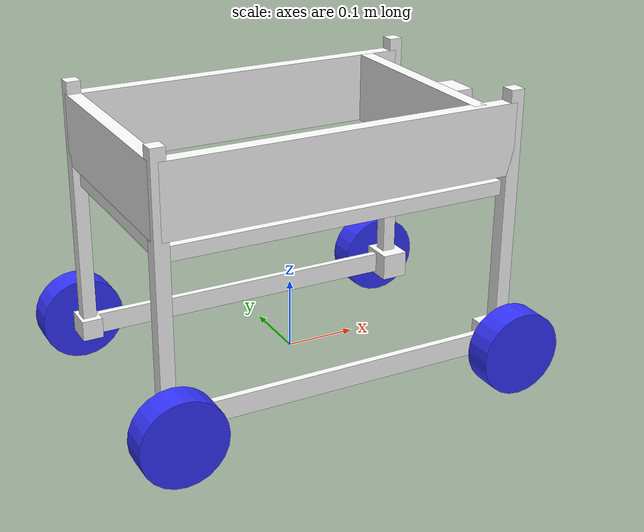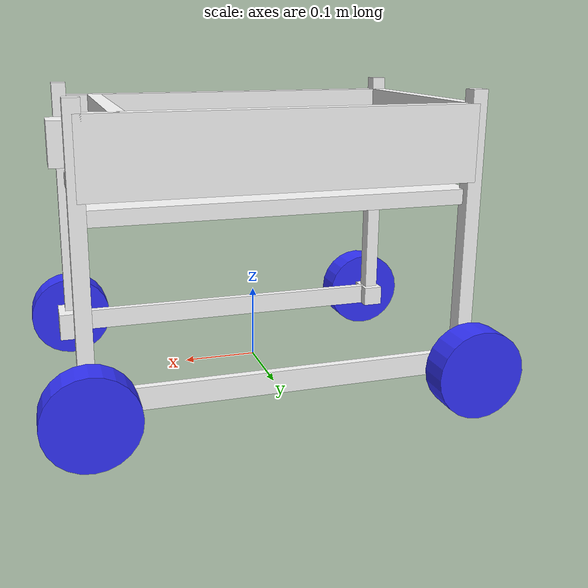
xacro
<?xml version="1.0"?>
<robot xmlns:xacro="http://www.ros.org/wiki/xacro" >
<xacro:include filename="inertial_macros.xacro" />
    <material name="white">
        <color rgba="1 1 1 1" />
    </material>

    <material name="orange">
        <color rgba="1 0.3 0.1 1"/>
    </material>

    <material name="blue">
        <color rgba="0.2 0.2 1 1"/>
    </material>

    <material name="black">
        <color rgba="0 0 0 1"/>
    </material>

    <material name="red">
        <color rgba="1 0 0 1"/>
    </material>

    <!-- BASE LINK -->

    <link name="base_link">

    </link>

    <!-- BASE_FOOTPRINT LINK -->

    <joint name="base_footprint_joint" type="fixed">
    <parent link="base_link"/>
    <child link="base_footprint"/>
    <origin xyz="0 0 0" rpy="0 0 0"/>
    </joint>

    <link name="base_footprint">
    </link>

    <joint name="chassis_joint" type="fixed">
    <parent link="base_link"/>
    <child link="chassis"/>
    <origin xyz="0 0 0"/>
    </joint>

    <link name="chassis">
    <visual>
        <origin xyz="0.0 0 0.25" rpy="0 0 0"/>
        <geometry>
            <box size="0.5 0.3 0.02"/>
            <!--mesh filename="file:///home/tien/colcon_ws/articubot_one/description/body.dae" scale="1 1 1"/-->
        </geometry>
        <material name="white"/>
    </visual>
    <collision>
        <origin xyz="0.0 0 0.25" rpy="0 0 0"/>
        <geometry>
            <box size="0.5 0.3 0.02"/>
            <!--mesh filename="file:///home/tien/colcon_ws/articubot_one/description/body.dae" scale="1 1 1"/-->
        </geometry>
    </collision>
    <xacro:inertial_box mass="25" x="0.5" y="0.3" z="0.02">
        <origin xyz="0 0 0.25" rpy="0 0 0"/>
    </xacro:inertial_box>
    </link>
    <gazebo reference="chassis">
    <material>Gazebo/White</material>
    </gazebo>

    <joint name="chassis_joint1" type="fixed">
    <parent link="base_link"/>
    <child link="chassissidel"/>
    <origin xyz="0 0 0"/>
    </joint>

    <link name="chassissidel">
    <visual>
        <origin xyz="0 0.15 0.32" rpy="0 0 0"/>
        <geometry>
            <box size="0.5 0.02 0.1"/>
        </geometry>
        <material name="white"/>
    </visual>
    <collision>
        <origin xyz="0 0.15 0.32" rpy="0 0 0"/>
        <geometry>
            <box size="0.5 0.02 0.1"/>
        </geometry>
    </collision>
    <xacro:inertial_box mass="0.75" x="0.5" y="0.02" z="0.1">
        <origin xyz="0 0.15 0.32" rpy="0 0 0"/>
    </xacro:inertial_box>
    </link>
    <gazebo reference="chassissidel">
    <material>Gazebo/White</material>
    </gazebo>

    <joint name="chassis_joint2" type="fixed">
    <parent link="base_link"/>
    <child link="chassissider"/>
    <origin xyz="0 0 0"/>
    </joint>

    <link name="chassissider">
    <visual>
        <origin xyz="0 -0.15 0.32" rpy="0 0 0"/>
        <geometry>
            <box size="0.5 0.02 0.1"/>
        </geometry>
        <material name="white"/>
    </visual>
    <collision>
        <origin xyz="0 -0.15 0.32" rpy="0 0 0"/>
        <geometry>
            <box size="0.5 0.02 0.1"/>
        </geometry>
    </collision>
    <xacro:inertial_box mass="0.75" x="0.5" y="0.02" z="0.1">
        <origin xyz="0 -0.15 0.32" rpy="0 0 0"/>
    </xacro:inertial_box>
    </link>
    <gazebo reference="chassissider">
    <material>Gazebo/White</material>
    </gazebo>

    <joint name="chassis_joint3" type="fixed">
    <parent link="base_link"/>
    <child link="chassissidef"/>
    <origin xyz="0 0 0"/>
    </joint>

    <link name="chassissidef">
    <visual>
        <origin xyz="0.2 0 0.32" rpy="0 0 0"/>
        <geometry>
            <box size="0.02 0.3 0.1"/>
        </geometry>
        <material name="white"/>
    </visual>
    <collision>
        <origin xyz="0.2 0 0.32" rpy="0 0 0"/>
        <geometry>
            <box size="0.02 0.3 0.1"/>
        </geometry>
    </collision>
    </link>
    <gazebo reference="chassissidef">
    <material>Gazebo/White</material>
    </gazebo>

    <joint name="chassis_joint4" type="fixed">
    <parent link="base_link"/>
    <child link="chassissideb"/>
    <origin xyz="0 0 0"/>
    </joint>

    <link name="chassissideb">
    <visual>
        <origin xyz="-0.25 0 0.32" rpy="0 0 0"/>
        <geometry>
            <box size="0.02 0.3 0.1"/>
        </geometry>
        <material name="white"/>
    </visual>
    <collision>
        <origin xyz="-0.25 0 0.32" rpy="0 0 0"/>
        <geometry>
            <box size="0.02 0.3 0.1"/>
        </geometry>
    </collision>
    </link>
    <gazebo reference="chassissideb">
    <material>Gazebo/White</material>
    </gazebo>

    <joint name="chassis_joint5" type="fixed">
    <parent link="base_link"/>
    <child link="sao_fl"/>
    <origin xyz="0 0 0"/>
    </joint>

    <link name="sao_fl">
    <visual>
        <origin xyz="0.25 -0.15 0.2" rpy="0 0 0"/>
        <geometry>
            <box size="0.02 0.02 0.375"/>
        </geometry>
        <material name="white"/>
    </visual>
    <collision>
        <origin xyz="0.25 -0.15 0.2" rpy="0 0 0"/>
        <geometry>
            <box size="0.02 0.02 0.375"/>
        </geometry>
    </collision>
    </link>
    <gazebo reference="sao_fl">
    <material>Gazebo/White</material>
    </gazebo>

    <joint name="chassis_joint6" type="fixed">
    <parent link="base_link"/>
    <child link="sao_fr"/>
    <origin xyz="0 0 0"/>
    </joint>

    <link name="sao_fr">
    <visual>
        <origin xyz="0.25 0.15 0.2" rpy="0 0 0"/>
        <geometry>
            <box size="0.02 0.02 0.375"/>
        </geometry>
        <material name="white"/>
    </visual>
    <collision>
        <origin xyz="0.25 0.15 0.2" rpy="0 0 0"/>
        <geometry>
            <box size="0.02 0.02 0.375"/>
        </geometry>
    </collision>
    </link>
    <gazebo reference="sao_fr">
    <material>Gazebo/White</material>
    </gazebo>

    <joint name="chassis_joint7" type="fixed">
    <parent link="base_link"/>
    <child link="sao_br"/>
    <origin xyz="0 0 0"/>
    </joint>

    <link name="sao_br">
    <visual>
        <origin xyz="-0.25 0.15 0.2" rpy="0 0 0"/>
        <geometry>
            <box size="0.02 0.02 0.375"/>
        </geometry>
        <material name="white"/>
    </visual>
    <collision>
        <origin xyz="-0.25 0.15 0.2" rpy="0 0 0"/>
        <geometry>
            <box size="0.02 0.02 0.375"/>
        </geometry>
    </collision>
    </link>
    <gazebo reference="sao_br">
    <material>Gazebo/White</material>
    </gazebo>

    <joint name="chassis_joint8" type="fixed">
    <parent link="base_link"/>
    <child link="sao_bl"/>
    <origin xyz="0 0 0"/>
    </joint>

    <link name="sao_bl">
    <visual>
        <origin xyz="-0.25 -0.15 0.2" rpy="0 0 0"/>
        <geometry>
            <box size="0.02 0.02 0.375"/>
        </geometry>
        <material name="white"/>
    </visual>
    <collision>
        <origin xyz="-0.25 -0.15 0.2" rpy="0 0 0"/>
        <geometry>
            <box size="0.02 0.02 0.375"/>
        </geometry>
    </collision>
    </link>
    <gazebo reference="sao_bl">
    <material>Gazebo/White</material>
    </gazebo>

    <joint name="chassis_joint9" type="fixed">
    <parent link="base_link"/>
    <child link="grippermotor"/>
    <origin xyz="0 0 0"/>
    </joint>

    <link name="grippermotor">
    <visual>
        <origin xyz="0.24 0 0.32" rpy="0 0 0"/>
        <geometry>
            <box size="0.07 0.05 0.06"/>
        </geometry>
        <material name="white"/>
    </visual>
    <collision>
        <origin xyz="0.24 0 0.32" rpy="0 0 0"/>
        <geometry>
            <box size="0.07 0.05 0.06"/>
        </geometry>
    </collision>
    </link>
    <gazebo reference="grippermotor">
    <material>Gazebo/White</material>
    </gazebo>

    <joint name="chassis_joint10" type="fixed">
    <parent link="base_link"/>
    <child link="drivemotor_fl"/>
    <origin xyz="0 0 0"/>
    </joint>

    <link name="drivemotor_fl">
    <visual>
        <origin xyz="0.25 0.15 0.023" rpy="0 0 0"/>
        <geometry>
            <box size="0.04 0.06 0.04"/>
        </geometry>
        <material name="white"/>
    </visual>
    <collision>
        <origin xyz="0.25 0.15 0.023" rpy="0 0 0"/>
        <geometry>
            <box size="0.04 0.06 0.04"/>
        </geometry>
    </collision>
    </link>
    <gazebo reference="drivemotor_fl">
    <material>Gazebo/White</material>
    </gazebo>

    <joint name="chassis_joint11" type="fixed">
    <parent link="base_link"/>
    <child link="drivemotor_fr"/>
    <origin xyz="0 0 0"/>
    </joint>

    <link name="drivemotor_fr">
    <visual>
        <origin xyz="0.25 -0.15 0.023" rpy="0 0 0"/>
        <geometry>
            <box size="0.04 0.06 0.04"/>
        </geometry>
        <material name="white"/>
    </visual>
    <collision>
        <origin xyz="0.25 -0.15 0.023" rpy="0 0 0"/>
        <geometry>
            <box size="0.04 0.06 0.04"/>
        </geometry>
    </collision>
    </link>
    <gazebo reference="drivemotor_fr">
    <material>Gazebo/White</material>
    </gazebo>

    <joint name="chassis_joint12" type="fixed">
    <parent link="base_link"/>
    <child link="drivemotor_br"/>
    <origin xyz="0 0 0"/>
    </joint>

    <link name="drivemotor_br">
    <visual>
        <origin xyz="-0.25 -0.15 0.023" rpy="0 0 0"/>
        <geometry>
            <box size="0.03 0.04 0.03"/>
        </geometry>
        <material name="white"/>
    </visual>
    <collision>
        <origin xyz="-0.25 -0.15 0.023" rpy="0 0 0"/>
        <geometry>
            <box size="0.03 0.04 0.03"/>
        </geometry>
    </collision>
    </link>
    <gazebo reference="drivemotor_br">
    <material>Gazebo/White</material>
    </gazebo>

    <joint name="chassis_joint13" type="fixed">
    <parent link="base_link"/>
    <child link="drivemotor_bl"/>
    <origin xyz="0 0 0"/>
    </joint>

    <link name="drivemotor_bl">
    <visual>
        <origin xyz="-0.25 0.15 0.023" rpy="0 0 0"/>
        <geometry>
            <box size="0.03 0.04 0.03"/>
        </geometry>
        <material name="white"/>
    </visual>
    <collision>
        <origin xyz="-0.25 0.15 0.023" rpy="0 0 0"/>
        <geometry>
            <box size="0.03 0.04 0.03"/>
        </geometry>
    </collision>
    </link>
    <gazebo reference="drivemotor_bl">
    <material>Gazebo/White</material>
    </gazebo>

    <joint name="chassis_joint14" type="fixed">
    <parent link="base_link"/>
    <child link="sidebot_l"/>
    <origin xyz="0 0 0"/>
    </joint>

    <link name="sidebot_l">
    <visual>
        <origin xyz="0 0.15 0.023" rpy="0 0 0"/>
        <geometry>
            <box size="0.5 0.01 0.03"/>
        </geometry>
        <material name="white"/>
    </visual>
    <collision>
        <origin xyz="0 0.15 0.023" rpy="0 0 0"/>
        <geometry>
            <box size="0.5 0.01 0.03"/>
        </geometry>
    </collision>
    </link>
    <gazebo reference="sidebot_l">
    <material>Gazebo/White</material>
    </gazebo>

    <joint name="chassis_joint15" type="fixed">
    <parent link="base_link"/>
    <child link="sidebot_r"/>
    <origin xyz="0 0 0"/>
    </joint>

    <link name="sidebot_r">
    <visual>
        <origin xyz="0 -0.15 0.023" rpy="0 0 0"/>
        <geometry>
            <box size="0.5 0.01 0.03"/>
        </geometry>
        <material name="white"/>
    </visual>
    <collision>
        <origin xyz="0 -0.15 0.023" rpy="0 0 0"/>
        <geometry>
            <box size="0.5 0.01 0.03"/>
        </geometry>
    </collision>
    </link>
    <gazebo reference="sidebot_r">
    <material>Gazebo/White</material>
    </gazebo>

    <!-- Front LEFT WHEEL -->

    <joint name="Front_left_wheel_joint" type="continuous">
    <parent link="base_link"/>
    <child link="Front_left_wheel"/>
    <origin xyz="0.25 0.19 0.023" rpy="-${pi/2} 0 0"/>
    <axis xyz="0 0 1"/>
    </joint>

    <link name="Front_left_wheel">
    <visual>
        <geometry>
            <cylinder length="0.04" radius="0.06" />
        </geometry>
        <material name="blue"/>
    </visual>
    <collision>
        <geometry>
            <cylinder length="0.04" radius="0.06" />
        </geometry>
    </collision>
    <xacro:inertial_cylinder mass="0.2" length="0.05" radius="0.06">
        <origin xyz="0 0 0" rpy="0 0 0"/>
    </xacro:inertial_cylinder>
    </link>
    <gazebo reference="Front_left_wheel">
    <material>Gazebo/Black</material>
    </gazebo>

    <!-- Rear LEFT WHEEL -->

    <joint name="Rear_left_wheel_joint" type="continuous">
    <parent link="base_link"/>
    <child link="Rear_left_wheel"/>
    <origin xyz="-0.25 0.19 0.023" rpy="-${pi/2} 0 0"/>
    <axis xyz="0 0 1"/>
    </joint>

    <link name="Rear_left_wheel">
    <visual>
        <geometry>
            <cylinder length="0.04" radius="0.06" />
        </geometry>
        <material name="blue"/>
    </visual>
    <collision>
        <geometry>
            <cylinder length="0.04" radius="0.06" />
        </geometry>
    </collision>
    <xacro:inertial_cylinder mass="0.2" length="0.05" radius="0.06">
        <origin xyz="0 0 0" rpy="0 0 0"/>
    </xacro:inertial_cylinder>
    </link>
    <gazebo reference="Rear_left_wheel">
    <material>Gazebo/Black</material>
    <mu1 value="0.001"/>
    <mu2 value="0.001"/>
    </gazebo>

    <!-- Front RIGHT WHEEL -->

    <joint name="Front_right_wheel_joint" type="continuous">
    <parent link="base_link"/>
    <child link="Front_right_wheel"/>
    <origin xyz="0.25 -0.19 0.023" rpy="${pi/2} 0 0"/>
    <axis xyz="0 0 -1"/>
    </joint>

    <link name="Front_right_wheel">
    <visual>
        <geometry>
            <cylinder length="0.04" radius="0.06" />
        </geometry>
        <material name="blue"/>
    </visual>
    <collision>
        <geometry>
            <cylinder length="0.04" radius="0.06" />
        </geometry>
    </collision>
    <xacro:inertial_cylinder mass="0.2" length="0.05" radius="0.06">
        <origin xyz="0 0 0" rpy="0 0 0"/>
    </xacro:inertial_cylinder>
    </link>
    <gazebo reference="Front_right_wheel">
    <material>Gazebo/Black</material>
    </gazebo>

    <!-- Rear RIGHT WHEEL -->

    <joint name="Rear_right_wheel_joint" type="continuous">
    <parent link="base_link"/>
    <child link="Rear_right_wheel"/>
    <origin xyz="-0.25 -0.19 0.023" rpy="${pi/2} 0 0"/>
    <axis xyz="0 0 -1"/>
    </joint>

    <link name="Rear_right_wheel">
    <visual>
        <geometry>
            <cylinder length="0.04" radius="0.06" />
        </geometry>
        <material name="blue"/>
    </visual>
    <collision>
        <geometry>
            <cylinder length="0.04" radius="0.06" />
        </geometry>
    </collision>
    <xacro:inertial_cylinder mass="0.2" length="0.05" radius="0.06">
        <origin xyz="0 0 0" rpy="0 0 0"/>
    </xacro:inertial_cylinder>
    </link>
    <gazebo reference="Rear_right_wheel">
    <material>Gazebo/Black</material>
    <mu1 value="0.001"/>
    <mu2 value="0.001"/>
    </gazebo>

</robot>

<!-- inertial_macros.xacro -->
<robot xmlns:xacro="http://www.ros.org/wiki/xacro" >

    <!-- Specify some standard inertial calculations https://en.wikipedia.org/wiki/List_of_moments_of_inertia -->
    <!-- These make use of xacro's mathematical functionality -->

    <xacro:macro name="inertial_sphere" params="mass radius *origin">
        <inertial>
            <xacro:insert_block name="origin"/>
            <mass value="${mass}" />
            <inertia ixx="${(2/5) * mass * (radius*radius)}" ixy="0.0" ixz="0.0"
                    iyy="${(2/5) * mass * (radius*radius)}" iyz="0.0"
                    izz="${(2/5) * mass * (radius*radius)}" />
        </inertial>
    </xacro:macro>

    <xacro:macro name="inertial_box" params="mass x y z *origin">
        <inertial>
            <xacro:insert_block name="origin"/>
            <mass value="${mass}" />
            <inertia ixx="${(1/12) * mass * (y*y+z*z)}" ixy="0.0" ixz="0.0"
                    iyy="${(1/12) * mass * (x*x+z*z)}" iyz="0.0"
                    izz="${(1/12) * mass * (x*x+y*y)}" />
        </inertial>
    </xacro:macro>

    <xacro:macro name="inertial_cylinder" params="mass length radius *origin">
        <inertial>
            <xacro:insert_block name="origin"/>
            <mass value="${mass}" />
            <inertia ixx="${(1/12) * mass * (3*radius*radius + length*length)}" ixy="0.0" ixz="0.0"
                    iyy="${(1/12) * mass * (3*radius*radius + length*length)}" iyz="0.0"
                    izz="${(1/2) * mass * (radius*radius)}" />
        </inertial>
    </xacro:macro>

    <xacro:macro name="default_inertial" params="mass z_value i_value">
    	<inertial>
    	    <mass value="${mass}" />
      	    <origin xyz="0 0 ${z_value}" rpy="0 0 0" />
      	    <inertia ixx="${i_value}" ixy="0.0" ixz="0.0" iyy="${i_value}" iyz="0.0" izz="${i_value}" />
    	</inertial>
    </xacro:macro>

</robot>
